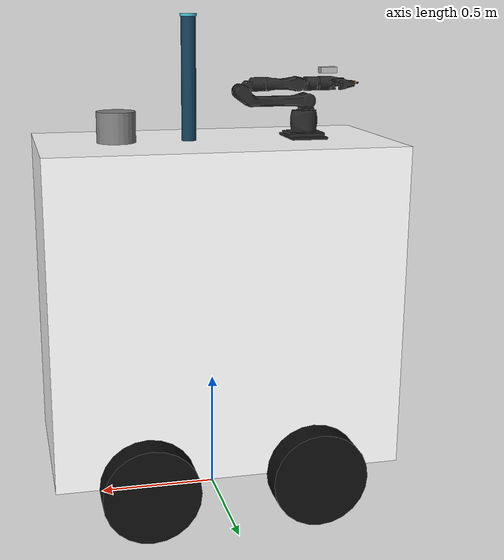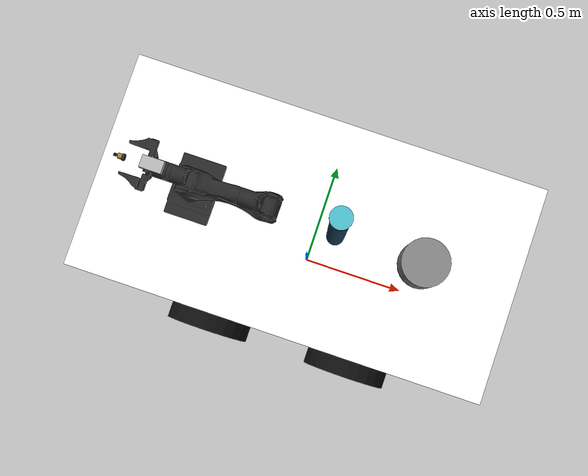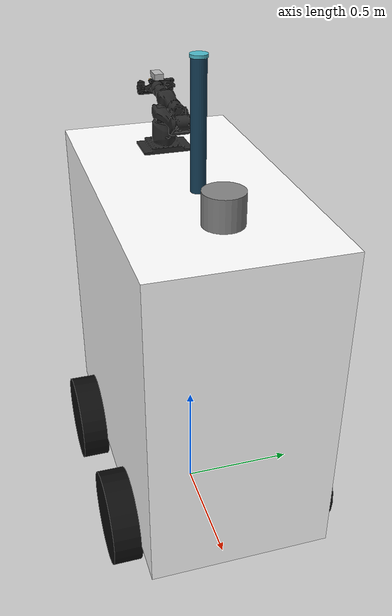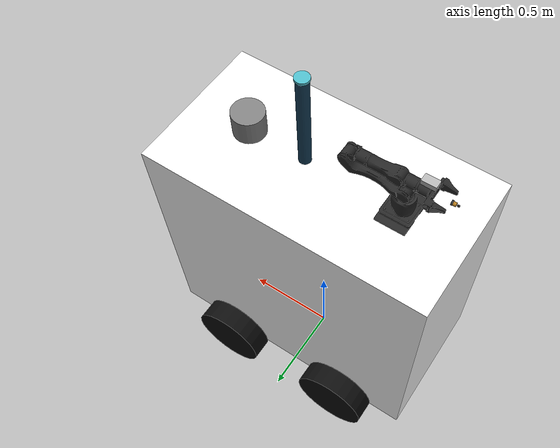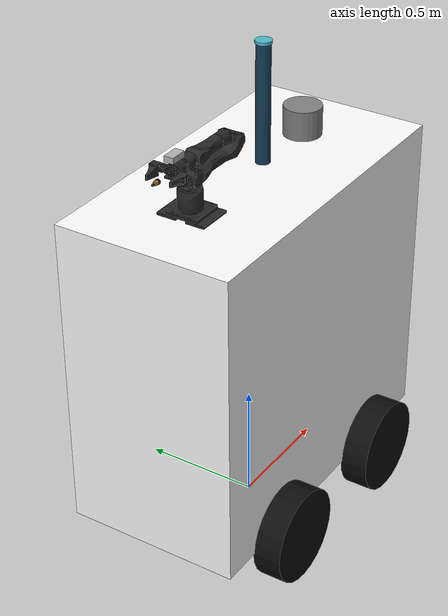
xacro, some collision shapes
<?xml version="1.0"?>
<robot name="wvcsc_utb_alicia" xmlns:xacro="http://www.ros.org/wiki/xacro">
  <xacro:arg name="enable_arm_control" default="true"/>
  <xacro:arg name="enable_ackermann" default="true"/>
  <xacro:arg name="enable_gazebo_ros2_control" default="false"/>
  <xacro:arg name="enable_c10_camera" default="true"/>
  <xacro:arg name="enable_c10_gazebo" default="false"/>
  <xacro:arg name="c10_noise_stddev" default="0.007"/>
  <xacro:arg name="calibration_fix_base" default="false"/>

    <!-- 机械臂车顶安装参数 -->
  <!--
    Alicia 原始 URDF 默认把机械臂底座命名为 base_link，
    会与小车 base_link 重名，因此覆盖为 alicia_base_link。
  -->
  <xacro:arg name="alicia_base_link" default="alicia_base_link"/>
  <!--
    小车车体高度为 1.35 m，base_link 位于车体几何中心，
    因此车顶相对 base_link 的 Z 坐标为 1.35 / 2 = 0.675 m。
  -->
  <xacro:arg name="vehicle_roof_z" default="0.675"/>
  <!--
    机械臂相对于车顶安装坐标系的位置：
    沿 base_link 负 X 方向平移 0.40 m。
  -->
  <xacro:arg name="arm_mount_xyz" default="-0.40 0 0"/>
  <!--
    绕 Z 轴旋转 180°，使机械臂底座 X 轴方向反转，
    同时保持机械臂 Z 轴朝上。
  -->
  <xacro:arg
    name="arm_mount_rpy"
    default="0 0 3.141592653589793"/>

  <!-- Temporary eye-in-hand extrinsics. Recalibrate after the real bracket is fixed. -->
  <xacro:arg name="c10_mount_xyz" default="-0.055 0 -0.10"/>
  <xacro:arg name="c10_mount_rpy" default="0 -1.57079632679 0"/>
  <!-- Calibrated spray origin; local +Z is the liquid centreline. -->
  <xacro:arg name="nozzle_mount_xyz" default="0 0 0"/>
  <xacro:arg name="nozzle_mount_rpy" default="0 0 0"/>
  <xacro:arg name="gazebo_controllers_file" default="$(find wvcsc_description)/config/ros2_controllers.yaml"/>
  <xacro:arg name="ros2_control_plugin" default="mock_components/GenericSystem"/>
  <xacro:arg name="initial_positions_file" default="$(find alicia_m_moveit_config)/config/initial_positions.yaml"/>
  <xacro:arg name="serial_port" default="/dev/my_robot"/>
  <xacro:arg name="baudrate" default="1000000"/>
  <xacro:arg name="control_mode" default="pv"/>
  <xacro:arg name="default_speed" default="1.0"/>
  <xacro:arg name="mit_kp" default="50.0"/>
  <xacro:arg name="mit_kd" default="2.0"/>

  <!-- Model geometry remains owned by the original vehicle and arm descriptions. -->
  <xacro:include filename="$(find wtb_car_driver)/urdf/wtb_car.xacro"/>
  <xacro:include filename="$(find alicia_m_descriptions)/urdf/Alicia_M_v1_1/Alicia_M_v1_1_follower.urdf"/>
  <xacro:include filename="$(find alicia_m_moveit_config)/config/alicia_m_v1_1_follower.ros2_control.xacro"/>

  <xacro:if value="$(arg calibration_fix_base)">
    <link name="world"/>
    <joint name="world_to_base_footprint" type="fixed">
      <parent link="world"/>
      <child link="base_footprint"/>
      <origin xyz="0 0 0" rpy="0 0 0"/>
    </joint>
  </xacro:if>

  <!--
    车顶安装坐标系。
    wtb_car.xacro 中：
      base_height = 1.35 m
    base_link 位于车体几何中心，所以车顶位置为：
      Z = 1.35 / 2 = 0.675 m
  -->
  <link name="arm_mount_link"/>

  <joint name="arm_mount_frame_joint" type="fixed">
    <parent link="base_link"/>
    <child link="arm_mount_link"/>

    <!-- arm_mount_link 原点位于小车车顶表面 -->
    <origin
      xyz="0 0 $(arg vehicle_roof_z)"
      rpy="0 0 0"/>
  </joint>
  <!--
    机械臂与车顶安装坐标系之间的固定连接。
    xyz="-0.40 0 0"：
      沿 base_link 负 X 方向移动 0.40 m。
    rpy="0 0 pi"：
      绕 Z 轴旋转 180°，机械臂底座 X 轴反向，
      机械臂 Z 轴仍然保持朝上。
  -->
  <joint name="alicia_mount_joint" type="fixed">
    <parent link="arm_mount_link"/>
    <child link="$(arg alicia_base_link)"/>

    <origin
      xyz="$(arg arm_mount_xyz)"
      rpy="$(arg arm_mount_rpy)"/>
  </joint>

  <!-- 车顶广域喷洒柱：底面中心位于 base_link (0.10, 0, 0.675)。
       该模型既是 Gazebo 中的广域喷洒出雾原点，也是 MoveIt 必须避开的
       自碰撞实体；+Z 为柱体和环喷的轴线方向。 -->
  <link name="wide_sprayer_link">
    <visual>
      <origin xyz="0 0 0.250" rpy="0 0 0"/>
      <geometry><cylinder radius="0.030" length="0.500"/></geometry>
      <material name="wide_sprayer_blue"><color rgba="0.08 0.24 0.34 1"/></material>
    </visual>
    <visual>
      <origin xyz="0 0 0.500" rpy="0 0 0"/>
      <geometry><cylinder radius="0.034" length="0.012"/></geometry>
      <material name="wide_sprayer_cap"><color rgba="0.30 0.72 0.78 1"/></material>
    </visual>
    <collision>
      <origin xyz="0 0 0.255" rpy="0 0 0"/>
      <geometry><cylinder radius="0.035" length="0.510"/></geometry>
    </collision>
  </link>
  <joint name="wide_sprayer_joint" type="fixed">
    <parent link="base_link"/>
    <child link="wide_sprayer_link"/>
    <origin xyz="0.10 0 $(arg vehicle_roof_z)" rpy="0 0 0"/>
  </joint>

  <!-- tool0 即当前喷嘴安装基准；局部 +Z 为喷流中心轴。使用三级圆柱形成
       紧凑的中空喷嘴外观，碰撞包络只略大于真实外观。 -->
  <link name="spray_nozzle_link">
    <visual>
      <origin xyz="0 0 0.004" rpy="0 0 0"/>
      <geometry><cylinder radius="0.011" length="0.008"/></geometry>
      <material name="nozzle_mount"><color rgba="0.16 0.18 0.20 1"/></material>
    </visual>
    <visual>
      <origin xyz="0 0 0.015" rpy="0 0 0"/>
      <geometry><cylinder radius="0.009" length="0.014"/></geometry>
      <material name="nozzle_brass"><color rgba="0.70 0.48 0.12 1"/></material>
    </visual>
    <visual>
      <origin xyz="0 0 0.031" rpy="0 0 0"/>
      <geometry><cylinder radius="0.005" length="0.010"/></geometry>
      <material name="nozzle_exit"><color rgba="0.06 0.06 0.06 1"/></material>
    </visual>
    <collision>
      <origin xyz="0 0 0.0175" rpy="0 0 0"/>
      <geometry><cylinder radius="0.012" length="0.035"/></geometry>
    </collision>
  </link>
  <joint name="spray_nozzle_joint" type="fixed">
    <parent link="tool0"/>
    <child link="spray_nozzle_link"/>
    <origin xyz="$(arg nozzle_mount_xyz)" rpy="$(arg nozzle_mount_rpy)"/>
  </joint>

  <xacro:if value="$(arg enable_c10_camera)">
    <link name="camera_link">
      <visual>
        <origin xyz="0 0 0" rpy="0 0 0"/>
        <geometry>
          <mesh filename="package://wvcsc_description/meshes/c10/camera.dae"/>
        </geometry>
      </visual>
      <collision>
        <origin xyz="0 0 0" rpy="0 0 0"/>
        <geometry><box size="0.070 0.040 0.025"/></geometry>
      </collision>
      <inertial>
        <mass value="0.130"/>
        <inertia ixx="0.000020" ixy="0" ixz="0"
                 iyy="0.000055" iyz="0" izz="0.000060"/>
      </inertial>
    </link>
    <joint name="c10_mount_joint" type="fixed">
      <parent link="tool0"/>
      <child link="camera_link"/>
      <origin xyz="$(arg c10_mount_xyz)" rpy="$(arg c10_mount_rpy)"/>
    </joint>

    <link name="camera_color_optical_frame"/>
    <joint name="camera_color_optical_joint" type="fixed">
      <parent link="camera_link"/>
      <child link="camera_color_optical_frame"/>
      <origin xyz="0 0 0" rpy="-1.57079632679 0 -1.57079632679"/>
    </joint>

    <xacro:if value="$(arg enable_c10_gazebo)">
      <!-- Keep Gazebo rendering tied to the same measured C10 calibration
           used by the real usb_cam driver. -->
      <xacro:property name="c10_calibration" value="${xacro.load_yaml('$(find wvcsc_c10_camera)/config/c10_intrinsics.yaml')}"/>
      <xacro:property name="c10_width" value="${c10_calibration['image_width']}"/>
      <xacro:property name="c10_height" value="${c10_calibration['image_height']}"/>
      <xacro:property name="c10_fx" value="${c10_calibration['camera_matrix']['data'][0]}"/>
      <xacro:property name="c10_fy" value="${c10_calibration['camera_matrix']['data'][4]}"/>
      <xacro:property name="c10_cx" value="${c10_calibration['camera_matrix']['data'][2]}"/>
      <xacro:property name="c10_cy" value="${c10_calibration['camera_matrix']['data'][5]}"/>
      <xacro:property name="c10_k1" value="${c10_calibration['distortion_coefficients']['data'][0]}"/>
      <xacro:property name="c10_k2" value="${c10_calibration['distortion_coefficients']['data'][1]}"/>
      <xacro:property name="c10_p1" value="${c10_calibration['distortion_coefficients']['data'][2]}"/>
      <xacro:property name="c10_p2" value="${c10_calibration['distortion_coefficients']['data'][3]}"/>
      <xacro:property name="c10_k3" value="${c10_calibration['distortion_coefficients']['data'][4]}"/>
      <!-- Gazebo lumps fixed camera_link into link6, so attach its sensor to
           the retained parent link with the equivalent fixed transform. -->
      <gazebo reference="link6">
        <sensor name="c10_color" type="camera">
          <always_on>true</always_on>
          <update_rate>30.0</update_rate>
          <visualize>false</visualize>
          <pose>-0.055 0 0.05 0 -1.57079632679 0</pose>
          <camera name="c10_optical">
            <horizontal_fov>${2.0 * atan(c10_width / (2.0 * c10_fx))}</horizontal_fov>
            <image>
              <width>${c10_width}</width>
              <height>${c10_height}</height>
              <format>R8G8B8</format>
            </image>
            <clip><near>0.02</near><far>300</far></clip>
            <distortion>
              <k1>${c10_k1}</k1><k2>${c10_k2}</k2><k3>${c10_k3}</k3>
              <p1>${c10_p1}</p1><p2>${c10_p2}</p2>
              <center>${c10_cx / c10_width} ${c10_cy / c10_height}</center>
            </distortion>
            <lens>
              <intrinsics>
                <fx>${c10_fx}</fx><fy>${c10_fy}</fy>
                <cx>${c10_cx}</cx><cy>${c10_cy}</cy><s>0</s>
              </intrinsics>
            </lens>
            <noise><type>gaussian</type><mean>0.0</mean><stddev>$(arg c10_noise_stddev)</stddev></noise>
          </camera>
          <plugin name="c10_camera_plugin" filename="libgazebo_ros_camera.so">
            <ros>
              <namespace>/camera</namespace>
              <qos>
                <topic name="color/image_raw">
                  <publisher>
                    <reliability>best_effort</reliability>
                    <history depth="1">keep_last</history>
                  </publisher>
                </topic>
                <topic name="color/camera_info">
                  <publisher>
                    <reliability>best_effort</reliability>
                    <history depth="1">keep_last</history>
                  </publisher>
                </topic>
              </qos>
            </ros>
            <camera_name>color</camera_name>
            <frame_name>camera_color_optical_frame</frame_name>
            <!-- gazebo_ros_camera publishes K with one focal length; retain
                 measured fy in P while rendering uses the full fx/fy pair. -->
            <focal_length>${c10_fx}</focal_length>
            <cx>${c10_cx}</cx><cy>${c10_cy}</cy>
            <P_fx>${c10_fx}</P_fx><P_fy>${c10_fy}</P_fy>
            <P_cx>${c10_cx}</P_cx><P_cy>${c10_cy}</P_cy>
            <border_crop>false</border_crop>
          </plugin>
        </sensor>
      </gazebo>
    </xacro:if>
  </xacro:if>

  <xacro:if value="$(arg enable_arm_control)">
    <xacro:alicia_m_v1_1_follower_ros2_control
      name="AliciaHardware"
      initial_positions_file="$(arg initial_positions_file)"
      ros2_control_plugin="$(arg ros2_control_plugin)"
      serial_port="$(arg serial_port)"
      baudrate="$(arg baudrate)"
      control_mode="$(arg control_mode)"
      default_speed="$(arg default_speed)"
      mit_kp="$(arg mit_kp)"
      mit_kd="$(arg mit_kd)"/>
  </xacro:if>

  <gazebo reference="laser">
    <sensor name="laser" type="ray">
      <always_on>true</always_on><update_rate>10</update_rate><visualize>false</visualize>
      <ray>
        <scan><horizontal><samples>720</samples><resolution>1</resolution><min_angle>-1.047</min_angle><max_angle>1.047</max_angle></horizontal></scan>
        <range><min>0.15</min><max>20</max><resolution>0.02</resolution></range>
      </ray>
      <plugin name="laser_plugin" filename="libgazebo_ros_ray_sensor.so">
        <ros><remapping>~/out:=scan</remapping></ros>
        <output_type>sensor_msgs/LaserScan</output_type><frame_name>laser</frame_name>
      </plugin>
    </sensor>
  </gazebo>

  <xacro:if value="$(arg enable_ackermann)">
    <gazebo>
      <plugin name="vehicle_joint_state_publisher" filename="libgazebo_ros_joint_state_publisher.so">
        <update_rate>50.0</update_rate>
        <joint_name>left_front_steer_joint</joint_name>
        <joint_name>left_front_joint</joint_name>
        <joint_name>left_wheel_joint</joint_name>
        <joint_name>right_front_steer_joint</joint_name>
        <joint_name>right_front_joint</joint_name>
        <joint_name>right_wheel_joint</joint_name>
      </plugin>
    </gazebo>
  </xacro:if>

  <xacro:if value="$(arg enable_gazebo_ros2_control)">
    <gazebo>
      <plugin name="gazebo_ros2_control" filename="libgazebo_ros2_control.so">
        <parameters>$(arg gazebo_controllers_file)</parameters>
      </plugin>
    </gazebo>
  </xacro:if>

</robot>

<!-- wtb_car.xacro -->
<robot name="wtb_robot" xmlns:xacro="http://www.ros.org/wiki/xacro">
  <xacro:property name="base_length" value="1.45"/>
  <xacro:property name="base_width" value="0.75"/>
  <xacro:property name="base_height" value="1.35"/>
  <xacro:property name="base_z" value="0.20"/>
  <xacro:property name="wheel_radius" value="0.20"/>
  <xacro:property name="wheel_length" value="0.12"/>
  <xacro:property name="wheel_x" value="0.35"/>
  <xacro:property name="wheel_y" value="0.43"/>

  <xacro:macro name="box_inertial" params="mass x y z">
    <inertial>
      <mass value="${mass}"/>
      <inertia ixx="${mass*(y*y+z*z)/12}" ixy="0" ixz="0"
               iyy="${mass*(x*x+z*z)/12}" iyz="0"
               izz="${mass*(x*x+y*y)/12}"/>
    </inertial>
  </xacro:macro>

  <xacro:macro name="wheel_link" params="name">
    <link name="${name}_link">
      <visual>
        <origin rpy="1.5708 0 0"/>
        <geometry><cylinder radius="${wheel_radius}" length="${wheel_length}"/></geometry>
        <material name="wtb_black"><color rgba="0.05 0.05 0.05 1"/></material>
      </visual>
      <collision>
        <origin rpy="1.5708 0 0"/>
        <geometry><cylinder radius="${wheel_radius}" length="${wheel_length}"/></geometry>
      </collision>
      <inertial>
        <mass value="3.0"/>
        <inertia ixx="0.0636" ixy="0" ixz="0" iyy="0.0636" iyz="0" izz="0.0216"/>
      </inertial>
    </link>
  </xacro:macro>

  <xacro:macro name="rear_wheel" params="name x y">
    <xacro:wheel_link name="${name}"/>
    <joint name="${name}_joint" type="continuous">
      <parent link="base_link"/><child link="${name}_link"/>
      <origin xyz="${x} ${y} ${-base_height/2}"/>
      <axis xyz="0 1 0"/>
      <limit effort="500" velocity="20"/>
      <dynamics damping="0.2" friction="0.1"/>
    </joint>
  </xacro:macro>

  <xacro:macro name="front_wheel" params="name x y">
    <link name="${name}_steer_link">
      <inertial><mass value="0.1"/><inertia ixx="0.001" ixy="0" ixz="0" iyy="0.001" iyz="0" izz="0.001"/></inertial>
    </link>
    <joint name="${name}_steer_joint" type="revolute">
      <parent link="base_link"/><child link="${name}_steer_link"/>
      <origin xyz="${x} ${y} ${-base_height/2}"/>
      <axis xyz="0 0 1"/>
      <limit effort="500" velocity="2" lower="-0.6109" upper="0.6109"/>
      <dynamics damping="1"/>
    </joint>
    <xacro:wheel_link name="${name}"/>
    <joint name="${name}_joint" type="continuous">
      <parent link="${name}_steer_link"/><child link="${name}_link"/>
      <axis xyz="0 1 0"/>
      <limit effort="500" velocity="20"/>
      <dynamics damping="0.2" friction="0.1"/>
    </joint>
  </xacro:macro>

  <xacro:macro name="wtb_car">
    <link name="base_footprint"/>
    <link name="base_link">
      <visual>
        <geometry><box size="${base_length} ${base_width} ${base_height}"/></geometry>
        <material name="wtb_white"><color rgba="1 1 1 1"/></material>
      </visual>
      <collision><geometry><box size="${base_length} ${base_width} ${base_height}"/></geometry></collision>
      <xacro:box_inertial mass="90" x="${base_length}" y="${base_width}" z="${base_height}"/>
    </link>
    <joint name="base_link_joint" type="fixed">
      <parent link="base_footprint"/><child link="base_link"/>
      <origin xyz="0 0 ${base_z + base_height/2}"/>
    </joint>

    <xacro:if value="$(arg enable_ackermann)">
      <xacro:front_wheel name="left_front" x="${wheel_x}" y="${wheel_y}"/>
      <xacro:front_wheel name="right_front" x="${wheel_x}" y="${-wheel_y}"/>
      <xacro:rear_wheel name="left_wheel" x="${-wheel_x}" y="${wheel_y}"/>
      <xacro:rear_wheel name="right_wheel" x="${-wheel_x}" y="${-wheel_y}"/>
    </xacro:if>

    <link name="laser">
      <visual><geometry><cylinder radius="0.08" length="0.15"/></geometry><material name="wtb_gray"><color rgba="0.5 0.5 0.5 1"/></material></visual>
      <collision><geometry><cylinder radius="0.08" length="0.15"/></geometry></collision>
      <inertial><mass value="0.5"/><inertia ixx="0.001" ixy="0" ixz="0" iyy="0.001" iyz="0" izz="0.001"/></inertial>
    </link>
    <joint name="lidar_joint" type="fixed">
      <parent link="base_link"/><child link="laser"/><origin xyz="0.4 0 0.725"/>
    </joint>

    <link name="gyro_link">
      <visual><geometry><box size="0.1 0.1 0.01"/></geometry><material name="wtb_gray"/></visual>
      <collision><geometry><box size="0.1 0.1 0.01"/></geometry></collision>
      <xacro:box_inertial mass="0.1" x="0.1" y="0.1" z="0.01"/>
    </link>
    <joint name="IMU_joint" type="fixed">
      <parent link="base_link"/><child link="gyro_link"/><origin xyz="0 0 -0.4"/>
    </joint>
  </xacro:macro>

  <xacro:wtb_car/>
</robot>

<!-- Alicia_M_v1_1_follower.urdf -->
<robot
  xmlns:xacro="http://www.ros.org/wiki/xacro"
  name="alicia_m_v1_1_follower">
  <xacro:arg name="alicia_base_link" default="base_link" />
  <xacro:arg name="use_collision_meshes" default="true" />
   <mujoco>
    <compiler meshdir="../../meshes/Alicia_M_v1_1/follower" discardvisual="false" />
  </mujoco>
  <link
    name="$(arg alicia_base_link)">
    <inertial>
      <origin
        xyz="-0.0074155 8.4202E-06 0.038118"
        rpy="0 0 0" />
      <mass
        value="2.5385" />
      <inertia
        ixx="0.0058527"
        ixy="2.114E-07"
        ixz="1.4479E-06"
        iyy="0.0045151"
        iyz="3.0868E-08"
        izz="0.0084155" />
    </inertial>
    <visual>
      <origin
        xyz="0 0 0"
        rpy="0 0 0" />
      <geometry>
        <mesh
          filename="package://alicia_m_descriptions/meshes/Alicia_M_v1_1/follower/base_link.STL" />
      </geometry>
      <material
        name="">
        <color
          rgba="0.15 0.15 0.15 1" />
      </material>
    </visual>
    <xacro:if value="$(arg use_collision_meshes)">
    <collision>
      <origin
        xyz="0 0 0"
        rpy="0 0 0" />
      <geometry>
        <mesh
          filename="package://alicia_m_descriptions/meshes/Alicia_M_v1_1/follower/base_link.STL" />
      </geometry>
    </collision>
    </xacro:if>
  </link>
  <link
    name="link1">
    <inertial>
      <origin
        xyz="0.00037898 -0.0010139 0.039387"
        rpy="0 0 0" />
      <mass
        value="0.54365" />
      <inertia
        ixx="0.00018974"
        ixy="-3.0439E-07"
        ixz="-2.5092E-07"
        iyy="0.00022251"
        iyz="4.4259E-07"
        izz="0.0002033" />
    </inertial>
    <visual>
      <origin
        xyz="0 0 0"
        rpy="0 0 0" />
      <geometry>
        <mesh
          filename="package://alicia_m_descriptions/meshes/Alicia_M_v1_1/follower/link1.STL" />
      </geometry>
      <material
        name="">
        <color
          rgba="0.15 0.15 0.15 1" />
      </material>
    </visual>
    <xacro:if value="$(arg use_collision_meshes)">
    <collision>
      <origin
        xyz="0 0 0"
        rpy="0 0 0" />
      <geometry>
        <mesh
          filename="package://alicia_m_descriptions/meshes/Alicia_M_v1_1/follower/link1.STL" />
      </geometry>
    </collision>
    </xacro:if>
  </link>
  <joint
    name="joint1"
    type="revolute">
    <origin
      xyz="0 0 0.10705"
      rpy="0 0 0" />
    <parent
      link="$(arg alicia_base_link)" />
    <child
      link="link1" />
    <axis
      xyz="0 0 1" />
    <limit
      lower="-2.75"
      upper="2.75"
      effort="5"
      velocity="10" />
  </joint>
  <link
    name="link2">
    <inertial>
      <origin
        xyz="-0.19722 0.016179 0.00075589"
        rpy="0 0 0" />
      <mass
        value="1.1153" />
      <inertia
        ixx="0.00057637"
        ixy="0.00022961"
        ixz="-1.956E-07"
        iyy="0.0033441"
        iyz="6.7003E-07"
        izz="0.0032279" />
    </inertial>
    <visual>
      <origin
        xyz="0 0 0"
        rpy="0 0 0" />
      <geometry>
        <mesh
          filename="package://alicia_m_descriptions/meshes/Alicia_M_v1_1/follower/link2.STL" />
      </geometry>
      <material
        name="">
        <color
          rgba="0.15 0.15 0.15 1" />
      </material>
    </visual>
    <xacro:if value="$(arg use_collision_meshes)">
    <collision>
      <origin
        xyz="0 0 0"
        rpy="0 0 0" />
      <geometry>
        <mesh
          filename="package://alicia_m_descriptions/meshes/Alicia_M_v1_1/follower/link2.STL" />
      </geometry>
    </collision>
    </xacro:if>
  </link>
  <joint
    name="joint2"
    type="revolute">
    <origin
      xyz="0 0 0.046"
      rpy="1.5708 0 0" />
    <parent
      link="link1" />
    <child
      link="link2" />
    <axis
      xyz="0 0 1" />
    <limit
      lower="-3.14"
      upper="0"
      effort="5"
      velocity="10" />
  </joint>
  <link
    name="link3">
    <inertial>
      <origin
        xyz="0.026259 -0.064912 -0.00065987"
        rpy="0 0 0" />
      <mass
        value="0.4356" />
      <inertia
        ixx="0.00012982"
        ixy="9.5271E-06"
        ixz="-6.8812E-08"
        iyy="0.0001789"
        iyz="1.5081E-07"
        izz="0.00014855" />
    </inertial>
    <visual>
      <origin
        xyz="0 0 0"
        rpy="0 0 0" />
      <geometry>
        <mesh
          filename="package://alicia_m_descriptions/meshes/Alicia_M_v1_1/follower/link3.STL" />
      </geometry>
      <material
        name="">
        <color
          rgba="0.15 0.15 0.15 1" />
      </material>
    </visual>
    <xacro:if value="$(arg use_collision_meshes)">
    <collision>
      <origin
        xyz="0 0 0"
        rpy="0 0 0" />
      <geometry>
        <mesh
          filename="package://alicia_m_descriptions/meshes/Alicia_M_v1_1/follower/link3.STL" />
      </geometry>
    </collision>
    </xacro:if>
  </link>
  <joint
    name="joint3"
    type="revolute">
    <origin
      xyz="-0.28185 0.040324 0"
      rpy="0 0 1.5708" />
    <parent
      link="link2" />
    <child
      link="link3" />
    <axis
      xyz="0 0 -1" />
    <limit
      lower="-3.14"
      upper="0"
      effort="5"
      velocity="10" />
  </joint>
  <link
    name="link4">
    <inertial>
      <origin
        xyz="3.9183E-06 0.001144 0.11644"
        rpy="0 0 0" />
      <mass
        value="0.57265" />
      <inertia
        ixx="0.00034557"
        ixy="-1.3549E-07"
        ixz="-1.4243E-09"
        iyy="0.00037178"
        iyz="-7.3926E-08"
        izz="0.00019935" />
    </inertial>
    <visual>
      <origin
        xyz="0 0 0"
        rpy="0 0 0" />
      <geometry>
        <mesh
          filename="package://alicia_m_descriptions/meshes/Alicia_M_v1_1/follower/link4.STL" />
      </geometry>
      <material
        name="">
        <color
          rgba="0.15 0.15 0.15 1" />
      </material>
    </visual>
    <xacro:if value="$(arg use_collision_meshes)">
    <collision>
      <origin
        xyz="0 0 0"
        rpy="0 0 0" />
      <geometry>
        <mesh
          filename="package://alicia_m_descriptions/meshes/Alicia_M_v1_1/follower/link4.STL" />
      </geometry>
    </collision>
    </xacro:if>
  </link>
  <joint
    name="joint4"
    type="revolute">
    <origin
      xyz="0.028563 -0.091416 0"
      rpy="-1.5708 0 -3.1412" />
    <parent
      link="link3" />
    <child
      link="link4" />
    <axis
      xyz="-0.00034722 0 1" />
    <limit
      lower="-1.57"
      upper="1.57"
      effort="5"
      velocity="10" />
  </joint>
  <link
    name="link5">
    <inertial>
      <origin
        xyz="-0.0001129 0.054381 0.0022373"
        rpy="0 0 0" />
      <mass
        value="0.38891" />
      <inertia
        ixx="0.00010415"
        ixy="-1.2554E-07"
        ixz="-1.4534E-07"
        iyy="0.0001484"
        iyz="5.2027E-08"
        izz="0.00011043" />
    </inertial>
    <visual>
      <origin
        xyz="0 0 0"
        rpy="0 0 0" />
      <geometry>
        <mesh
          filename="package://alicia_m_descriptions/meshes/Alicia_M_v1_1/follower/link5.STL" />
      </geometry>
      <material
        name="">
        <color
          rgba="0.15 0.15 0.15 1" />
      </material>
    </visual>
    <xacro:if value="$(arg use_collision_meshes)">
    <collision>
      <origin
        xyz="0 0 0"
        rpy="0 0 0" />
      <geometry>
        <mesh
          filename="package://alicia_m_descriptions/meshes/Alicia_M_v1_1/follower/link5.STL" />
      </geometry>
    </collision>
    </xacro:if>
  </link>
  <joint
    name="joint5"
    type="revolute">
    <origin
      xyz="-8.0556E-05 0 0.151"
      rpy="1.5708 0.00034722 0" />
    <parent
      link="link4" />
    <child
      link="link5" />
    <axis
      xyz="0 0 1" />
    <limit
      lower="-1.57"
      upper="1.57"
      effort="5"
      velocity="10" />
  </joint>
  <link
    name="link6">
    <inertial>
      <origin
        xyz="-0.00011097 -0.00066921 0.038228"
        rpy="0 0 0" />
      <mass
        value="0.35658" />
      <inertia
        ixx="0.00018353"
        ixy="5.0323E-08"
        ixz="-1.1884E-07"
        iyy="9.5615E-05"
        iyz="-1.2974E-08"
        izz="0.00021713" />
    </inertial>
    <visual>
      <origin
        xyz="0 0 0"
        rpy="0 0 0" />
      <geometry>
        <mesh
          filename="package://alicia_m_descriptions/meshes/Alicia_M_v1_1/follower/link6.STL" />
      </geometry>
      <material
        name="">
        <color
          rgba="0.15 0.15 0.15 1" />
      </material>
    </visual>
    <xacro:if value="$(arg use_collision_meshes)">
    <collision>
      <origin
        xyz="0 0 0"
        rpy="0 0 0" />
      <geometry>
        <mesh
          filename="package://alicia_m_descriptions/meshes/Alicia_M_v1_1/follower/link6.STL" />
      </geometry>
    </collision>
    </xacro:if>
  </link>
  <joint
    name="joint6"
    type="revolute">
    <origin
      xyz="5.2431E-05 0.081 0"
      rpy="-1.5708 0 0.00034722" />
    <parent
      link="link5" />
    <child
      link="link6" />
    <axis
      xyz="-0.00034722 0 1" />
    <limit
      lower="-2.75"
      upper="2.75"
      effort="5"
      velocity="10" />
  </joint>
  <link
    name="link7">
    <inertial>
      <origin
        xyz="-0.0062638 -0.056089 0.0037593"
        rpy="0 0 0" />
      <mass
        value="0.048674" />
      <inertia
        ixx="2.5291E-05"
        ixy="-1.0647E-06"
        ixz="1.8963E-07"
        iyy="1.9457E-05"
        iyz="2.7404E-06"
        izz="1.9529E-05" />
    </inertial>
    <visual>
      <origin
        xyz="0 0 0"
        rpy="0 0 0" />
      <geometry>
        <mesh
          filename="package://alicia_m_descriptions/meshes/Alicia_M_v1_1/follower/link7.STL" />
      </geometry>
      <material
        name="">
        <color
          rgba="0.15 0.15 0.15 1" />
      </material>
    </visual>
    <xacro:if value="$(arg use_collision_meshes)">
    <collision>
      <origin
        xyz="0 0 0"
        rpy="0 0 0" />
      <geometry>
        <mesh
          filename="package://alicia_m_descriptions/meshes/Alicia_M_v1_1/follower/link7.STL" />
      </geometry>
    </collision>
    </xacro:if>
  </link>
  <joint
    name="left_finger"
    type="prismatic">
    <origin
      xyz="0 -0.048175 0.151"
      rpy="1.5708 0.00034722 0" />
    <parent
      link="link6" />
    <child
      link="link7" />
    <axis
      xyz="0 0 1" />
    <limit
      lower="-0.05"
      upper="0.0"
      effort="5"
      velocity="10" />
  </joint>
  <link
    name="link8">
    <inertial>
      <origin
        xyz="0.0062638 -0.056089 -0.0037593"
        rpy="0 0 0" />
      <mass
        value="0.048674" />
      <inertia
        ixx="2.5291E-05"
        ixy="1.0647E-06"
        ixz="1.8963E-07"
        iyy="1.9457E-05"
        iyz="-2.7404E-06"
        izz="1.9529E-05" />
    </inertial>
    <visual>
      <origin
        xyz="0 0 0"
        rpy="0 0 0" />
      <geometry>
        <mesh
          filename="package://alicia_m_descriptions/meshes/Alicia_M_v1_1/follower/link8.STL" />
      </geometry>
      <material
        name="">
        <color
          rgba="0.15 0.15 0.15 1" />
      </material>
    </visual>
    <xacro:if value="$(arg use_collision_meshes)">
    <collision>
      <origin
        xyz="0 0 0"
        rpy="0 0 0" />
      <geometry>
        <mesh
          filename="package://alicia_m_descriptions/meshes/Alicia_M_v1_1/follower/link8.STL" />
      </geometry>
    </collision>
    </xacro:if>
  </link>
  <joint
    name="right_finger"
    type="prismatic">
    <origin
      xyz="0 0.046825 0.151"
      rpy="1.5708 0.00034722 0" />
    <parent
      link="link6" />
    <child
      link="link8" />
    <axis
      xyz="0 0 1" />
    <limit
      lower="0.0"
      upper="0.05"
      effort="5"
      velocity="10" />
    <mimic joint="left_finger" multiplier="-1.0" offset="0" />
  </joint>
  <link
    name="tool0">
  </link>
  <joint
    name="tool0_fixed_joint"
    type="fixed">
    <origin
      xyz="0 0 0.15"
      rpy="0 0 0" />
    <parent
      link="link6" />
    <child
      link="tool0" />
    <axis
      xyz="0 0 0" />
  </joint>
</robot>
